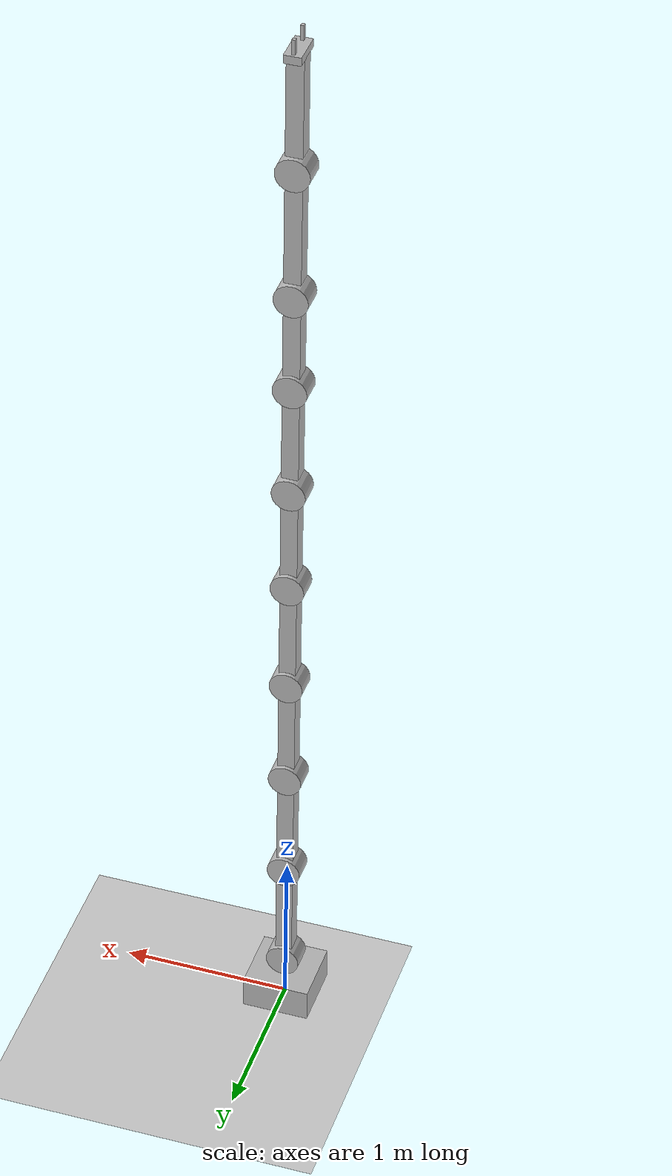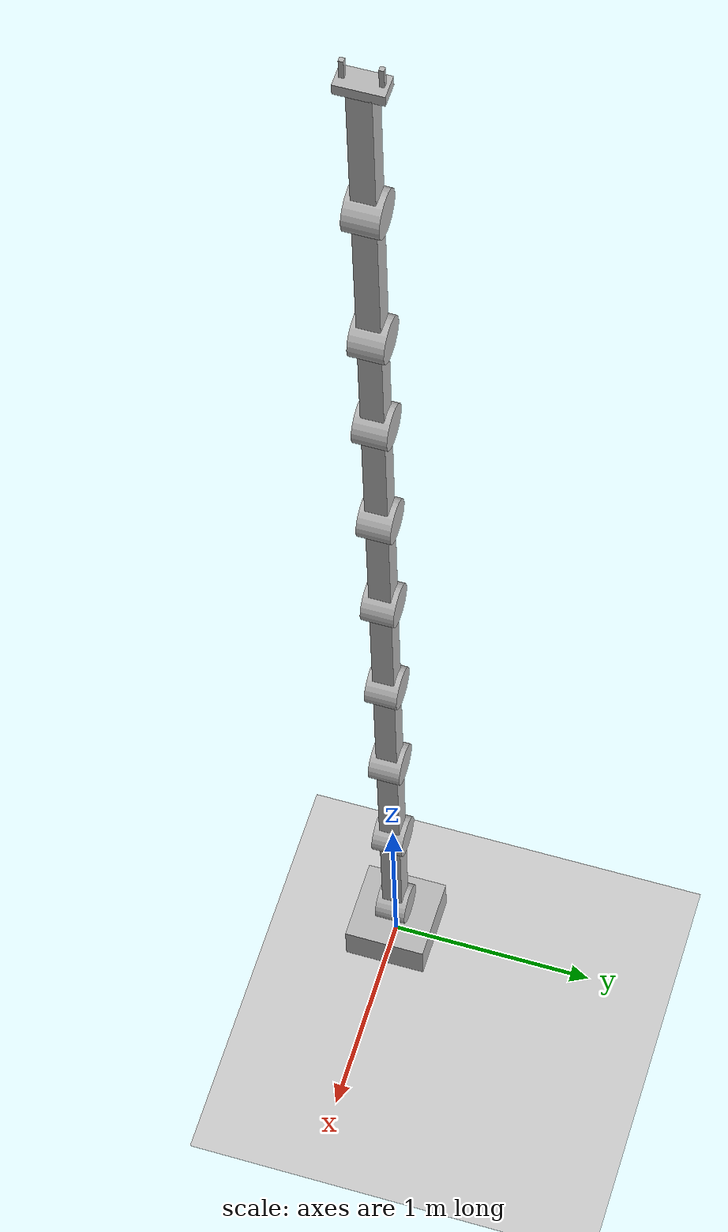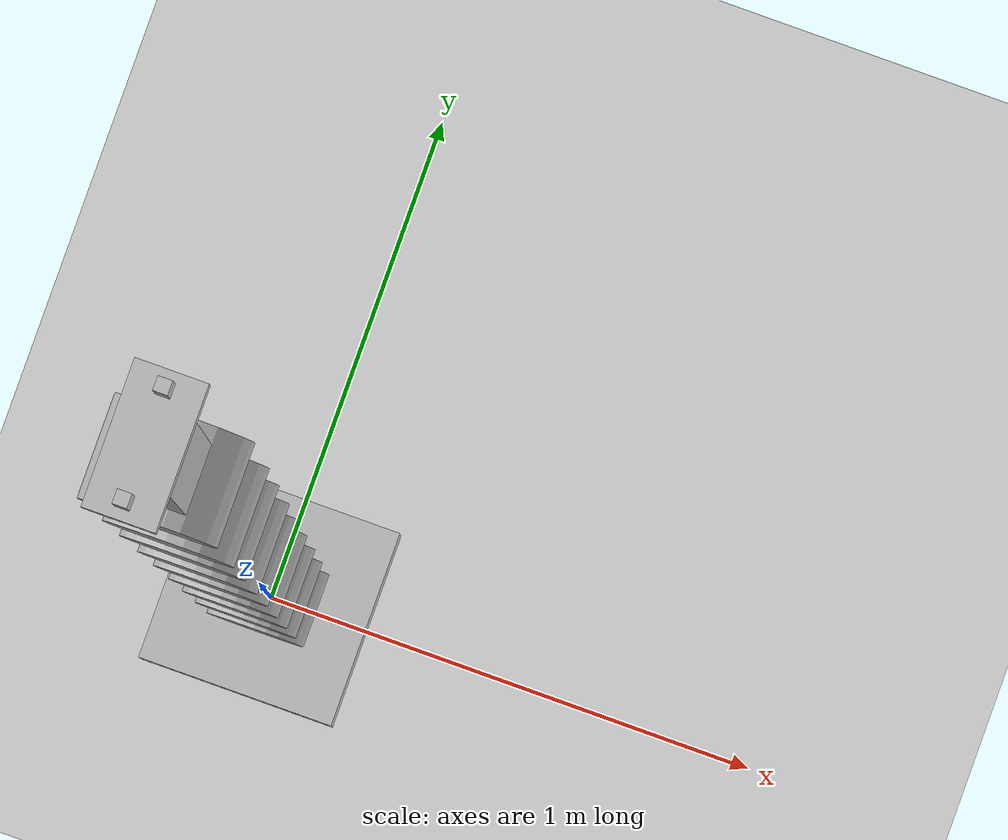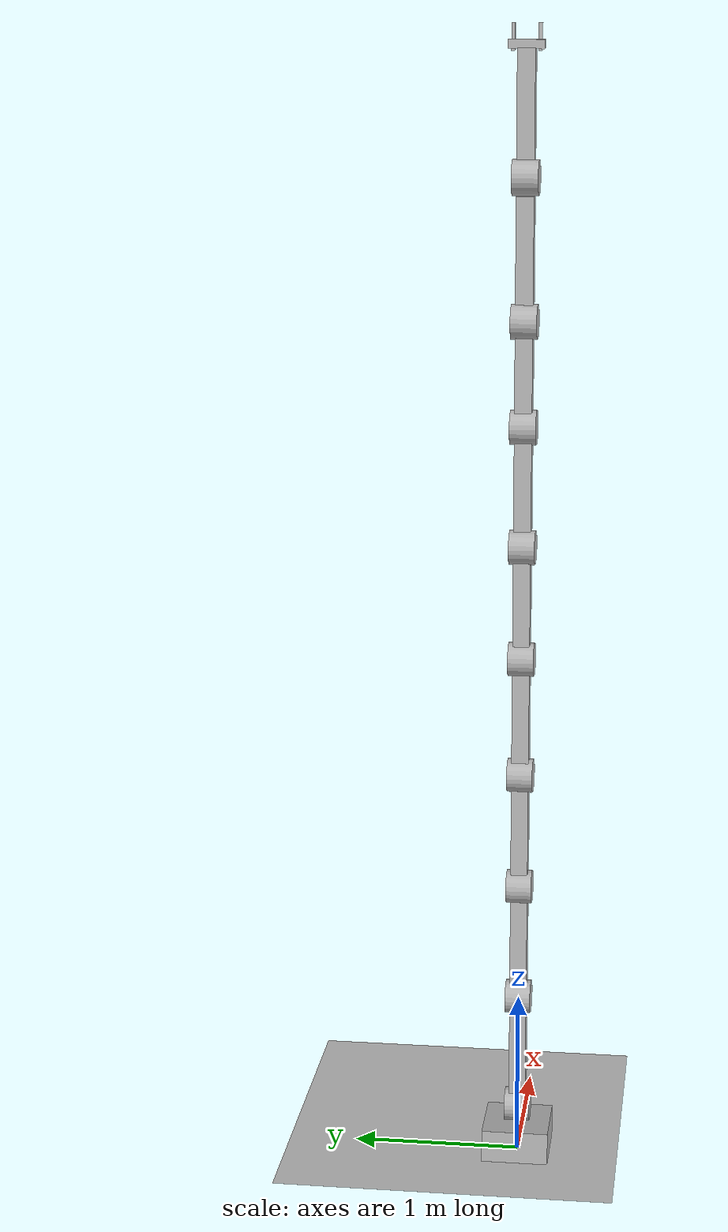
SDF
<?xml version="1.0" ?>
<sdf version="1.4">
  <world name="default">
    <!-- Ground Plane -->
    <include>
      <uri>model://ground_plane</uri>
    </include>
    <include>
      <uri>model://sun</uri>
    </include>
    <model name="my_model">
      <static>false</static>
      <link name="base">
        <pose>0 0 .1 0 0 0</pose>
        <inertial>
          <pose>0 0 0 0 0 0</pose>
          <inertia>
            <ixx>0.01</ixx>
            <ixy>0</ixy>
            <ixz>0</ixz>
            <iyy>0.01</iyy>
            <iyz>0</iyz>
            <izz>0.01</izz>
          </inertia>
          <mass>10</mass>
        </inertial>
        <collision name="collision">
          <geometry>
            <box>
              <size>0.4 0.4 0.2</size>
            </box>
          </geometry>
        </collision>
        <visual name="visual">
          <geometry>
            <box>
              <size>0.4 0.4 0.2</size>
            </box>
          </geometry>
        </visual>
      </link>
      <link name="joint1">
        <pose>0 0 0.3 0 1.5707 1.5707</pose>
        <collision name="collision">
          <geometry>
            <cylinder>
              <radius>.1</radius>
              <length>.15</length>
            </cylinder>
          </geometry>
        </collision>
        <visual name="visual">
          <geometry>
            <cylinder>
              <radius>.1</radius>
              <length>.15</length>
            </cylinder>
          </geometry>
        </visual>
      </link>
      <link name="link1">
        <pose>0 0 .66 0 0 0</pose>
        <inertial>
          <mass>.25</mass>
          <inertia>
            <!-- interias are tricky to compute -->
            <ixx>0.083</ixx>
            <!-- for a box: ixx = 0.083 * mass * (y*y + z*z) -->
            <ixy>0.0</ixy>
            <!-- for a box: ixy = 0 -->
            <ixz>0.0</ixz>
            <!-- for a box: ixz = 0 -->
            <iyy>0.083</iyy>
            <!-- for a box: iyy = 0.083 * mass * (x*x + z*z) -->
            <iyz>0.0</iyz>
            <!-- for a box: iyz = 0 -->
            <izz>0.083</izz>
            <!-- for a box: izz = 0.083 * mass * (x*x + y*y) -->
          </inertia>
        </inertial>
        <collision name="collision">
          <geometry>
            <box>
              <size>.1 .1 .6</size>
            </box>
          </geometry>
        </collision>
        <visual name="visual">
          <geometry>
            <box>
              <size>.1 .1 .6</size>
            </box>
          </geometry>
        </visual>
      </link>
      <link name="joint2">
        <pose>0 0 1.01 0 1.5707 1.5707</pose>
        <collision name="collision">
          <geometry>
            <cylinder>
              <radius>.1</radius>
              <length>.15</length>
            </cylinder>
          </geometry>
        </collision>
        <visual name="visual">
          <geometry>
            <cylinder>
              <radius>.1</radius>
              <length>.15</length>
            </cylinder>
          </geometry>
        </visual>
      </link>
      <link name="link2">
        <pose>0 0 1.37 0 0 0</pose>
        <inertial>
          <mass>.2</mass>
          <inertia>
            <ixx>0.083</ixx>
            <ixy>0.0</ixy>
            <ixz>0.0</ixz>
            <iyy>0.083</iyy>
            <iyz>0.0</iyz>
            <izz>0.083</izz>
          </inertia>
        </inertial>
        <collision name="collision1">
          <geometry>
            <box>
              <size>.1 .1 .6</size>
            </box>
          </geometry>
        </collision>
        <visual name="visual1">
          <geometry>
            <box>
              <size>.1 .1 .6</size>
            </box>
          </geometry>
        </visual>
      </link>
      <link name="joint3">
        <pose>0 0 1.72 0 1.5707 1.5707</pose>
        <collision name="collision">
          <geometry>
            <cylinder>
              <radius>.1</radius>
              <length>.15</length>
            </cylinder>
          </geometry>
        </collision>
        <visual name="visual">
          <geometry>
            <cylinder>
              <radius>.1</radius>
              <length>.15</length>
            </cylinder>
          </geometry>
        </visual>
      </link>
      <link name="link3">
        <pose>0 0 2.07 0 0 0</pose>
        <inertial>
          <mass>.2</mass>
          <inertia>
            <ixx>0.083</ixx>
            <ixy>0.0</ixy>
            <ixz>0.0</ixz>
            <iyy>0.083</iyy>
            <iyz>0.0</iyz>
            <izz>0.083</izz>
          </inertia>
        </inertial>
        <collision name="collision2">
          <geometry>
            <box>
              <size>.1 .1 .6</size>
            </box>
          </geometry>
        </collision>
        <visual name="visual2">
          <geometry>
            <box>
              <size>.1 .1 .6</size>
            </box>
          </geometry>
        </visual>
      </link>
      <link name="joint4">
        <pose>0 0 2.42 0 1.5707 1.5707</pose>
        <collision name="collision">
          <geometry>
            <cylinder>
              <radius>.1</radius>
              <length>.15</length>
            </cylinder>
          </geometry>
        </collision>
        <visual name="visual">
          <geometry>
            <cylinder>
              <radius>.1</radius>
              <length>.15</length>
            </cylinder>
          </geometry>
        </visual>
      </link>
      <link name="link4">
        <pose>0 0 2.78 0 0 0</pose>
        <inertial>
          <mass>.2</mass>
          <inertia>
            <ixx>0.083</ixx>
            <ixy>0.0</ixy>
            <ixz>0.0</ixz>
            <iyy>0.083</iyy>
            <iyz>0.0</iyz>
            <izz>0.083</izz>
          </inertia>
        </inertial>
        <collision name="collision3">
          <geometry>
            <box>
              <size>.1 .1 .6</size>
            </box>
          </geometry>
        </collision>
        <visual name="visual3">
          <geometry>
            <box>
              <size>.1 .1 .6</size>
            </box>
          </geometry>
        </visual>
      </link>
      <link name="joint5">
        <pose>0 0 3.13 0 1.5707 1.5707</pose>
        <collision name="collision">
          <geometry>
            <cylinder>
              <radius>.1</radius>
              <length>.15</length>
            </cylinder>
          </geometry>
        </collision>
        <visual name="visual">
          <geometry>
            <cylinder>
              <radius>.1</radius>
              <length>.15</length>
            </cylinder>
          </geometry>
        </visual>
      </link>
      <link name="link5">
        <pose>0 0 3.48 0 0 0</pose>
        <inertial>
          <mass>.2</mass>
          <inertia>
            <ixx>0.083</ixx>
            <ixy>0.0</ixy>
            <ixz>0.0</ixz>
            <iyy>0.083</iyy>
            <iyz>0.0</iyz>
            <izz>0.083</izz>
          </inertia>
        </inertial>
        <collision name="collision4">
          <geometry>
            <box>
              <size>.1 .1 .6</size>
            </box>
          </geometry>
        </collision>
        <visual name="visual4">
          <geometry>
            <box>
              <size>.1 .1 .6</size>
            </box>
          </geometry>
        </visual>
      </link>
      <link name="joint6">
        <pose>0 0 3.8 0 1.5707 1.5707</pose>
        <collision name="collision">
          <geometry>
            <cylinder>
              <radius>.1</radius>
              <length>.15</length>
            </cylinder>
          </geometry>
        </collision>
        <visual name="visual">
          <geometry>
            <cylinder>
              <radius>.1</radius>
              <length>.15</length>
            </cylinder>
          </geometry>
        </visual>
      </link>
    <link name="link6">
        <pose>0 0 4.2 0 0 0</pose>
        <inertial>
          <mass>.2</mass>
          <inertia>
            <ixx>0.083</ixx>
            <ixy>0.0</ixy>
            <ixz>0.0</ixz>
            <iyy>0.083</iyy>
            <iyz>0.0</iyz>
            <izz>0.083</izz>
          </inertia>
        </inertial>
        <collision name="collision4">
          <geometry>
            <box>
              <size>.1 .1 .6</size>
            </box>
          </geometry>
        </collision>
        <visual name="visual4">
          <geometry>
            <box>
              <size>.1 .1 .6</size>
            </box>
          </geometry>
        </visual>
      </link>
  <link name="joint7">
        <pose>0 0 4.5 0 1.5707 1.5707</pose>
        <collision name="collision">
          <geometry>
            <cylinder>
              <radius>.1</radius>
              <length>.15</length>
            </cylinder>
          </geometry>
        </collision>
        <visual name="visual">
          <geometry>
            <cylinder>
              <radius>.1</radius>
              <length>.15</length>
            </cylinder>
          </geometry>
        </visual>
      </link>
    <link name="link7">
        <pose>0 0 4.8 0 0 0</pose>
        <inertial>
          <mass>.2</mass>
          <inertia>
            <ixx>0.083</ixx>
            <ixy>0.0</ixy>
            <ixz>0.0</ixz>
            <iyy>0.083</iyy>
            <iyz>0.0</iyz>
            <izz>0.083</izz>
          </inertia>
        </inertial>
        <collision name="collision4">
          <geometry>
            <box>
              <size>.1 .1 .6</size>
            </box>
          </geometry>
        </collision>
        <visual name="visual4">
          <geometry>
            <box>
              <size>.1 .1 .6</size>
            </box>
          </geometry>
        </visual>
      </link>
  <link name="joint8">
        <pose>0 0 5.1 0 1.5707 1.5707</pose>
        <collision name="collision">
          <geometry>
            <cylinder>
              <radius>.1</radius>
              <length>.15</length>
            </cylinder>
          </geometry>
        </collision>
        <visual name="visual">
          <geometry>
            <cylinder>
              <radius>.1</radius>
              <length>.15</length>
            </cylinder>
          </geometry>
        </visual>
      </link>
    <link name="link8">
        <pose>0 0 5.5 0 0 0</pose>
        <inertial>
          <mass>.2</mass>
          <inertia>
            <ixx>0.083</ixx>
            <ixy>0.0</ixy>
            <ixz>0.0</ixz>
            <iyy>0.083</iyy>
            <iyz>0.0</iyz>
            <izz>0.083</izz>
          </inertia>
        </inertial>
        <collision name="collision4">
          <geometry>
            <box>
              <size>.1 .1 .6</size>
            </box>
          </geometry>
        </collision>
        <visual name="visual4">
          <geometry>
            <box>
              <size>.1 .1 .6</size>
            </box>
          </geometry>
        </visual>
      </link>
  <link name="joint9">
        <pose>0 0 5.9 0 1.5707 1.5707</pose>
        <collision name="collision">
          <geometry>
            <cylinder>
              <radius>.1</radius>
              <length>.15</length>
            </cylinder>
          </geometry>
        </collision>
        <visual name="visual">
          <geometry>
            <cylinder>
              <radius>.1</radius>
              <length>.15</length>
            </cylinder>
          </geometry>
        </visual>
      </link>
    <link name="link9">
        <pose>0 0 6.3 0 0 0</pose>
        <inertial>
          <mass>.2</mass>
          <inertia>
            <ixx>0.083</ixx>
            <ixy>0.0</ixy>
            <ixz>0.0</ixz>
            <iyy>0.083</iyy>
            <iyz>0.0</iyz>
            <izz>0.083</izz>
          </inertia>
        </inertial>
        <collision name="collision4">
          <geometry>
            <box>
              <size>.1 .1 .6</size>
            </box>
          </geometry>
        </collision>
        <visual name="visual4">
          <geometry>
            <box>
              <size>.1 .1 .6</size>
            </box>
          </geometry>
        </visual>
      </link>
     <link name="gripperbase">
        <pose>0 0 6.62 0 0 0</pose>
        <inertial>
          <mass>.1</mass>
          <inertia>
            <ixx>0.083</ixx>
            <ixy>0.0</ixy>
            <ixz>0.0</ixz>
            <iyy>0.083</iyy>
            <iyz>0.0</iyz>
            <izz>0.083</izz>
          </inertia>
        </inertial>
        <collision name="collision4">
          <geometry>
            <box>
              <size>.1 .2 .05</size>
            </box>
          </geometry>
        </collision>
        <visual name="visual4">
          <geometry>
            <box>
              <size>.1 .2 .05</size>
            </box>
          </geometry>
        </visual>
      </link>
  <link name="gripperleft">
        <pose>0 -0.075 6.66 0 0 0</pose>
        <inertial>
          <mass>.1</mass>
          <inertia>
            <ixx>0.083</ixx>
            <ixy>0.0</ixy>
            <ixz>0.0</ixz>
            <iyy>0.083</iyy>
            <iyz>0.0</iyz>
            <izz>0.083</izz>
          </inertia>
        </inertial>
        <collision name="collision4">
          <geometry>
            <box>
              <size>.02 .02 .15</size>
            </box>
          </geometry>
        </collision>
        <visual name="visual4">
          <geometry>
            <box>
              <size>.02 .02 .15</size>
            </box>
          </geometry>
        </visual>
      </link>
  <link name="gripperright">
        <pose>0 0.075 6.66 0 0 0</pose>
        <inertial>
          <mass>.1</mass>
          <inertia>
            <ixx>0.083</ixx>
            <ixy>0.0</ixy>
            <ixz>0.0</ixz>
            <iyy>0.083</iyy>
            <iyz>0.0</iyz>
            <izz>0.083</izz>
          </inertia>
        </inertial>
        <collision name="collision4">
          <geometry>
            <box>
              <size>.02 .02 .15</size>
            </box>
          </geometry>
        </collision>
        <visual name="visual4">
          <geometry>
            <box>
              <size>.02 .02 .15</size>
            </box>
          </geometry>
        </visual>
      </link>
      <joint name="base" type="revolute">
        <pose>0 0 0 0 0 0</pose>
        <child>base</child>
        <parent>world</parent>
        <axis>
          <limit>
            <lower>0</lower>
            <upper>0</upper>
          </limit>
          <xyz>1 0 0</xyz>
        </axis>
      </joint>
      <joint name="joint1" type="revolute">
        <pose>0 0 0 0 0 0</pose>
        <child>joint1</child>
        <parent>base</parent>
        <axis>
          <limit>
            <lower>-2</lower>
            <upper>2</upper>
          </limit>
          <xyz>0 1 0</xyz>
        </axis>
      </joint>
      <joint name="link1-join1" type="revolute">
        <pose>0 0 -0.05 0 0 0</pose>
        <child>link1</child>
        <parent>joint1</parent>
        <axis>
          <limit>
            <lower>0</lower>
            <upper>0</upper>
          </limit>
          <xyz>0 1 0</xyz>
        </axis>
      </joint>
      <joint name="joint2" type="revolute">
        <pose>0 0 -0.05 0 0 0</pose>
        <child>joint2</child>
        <parent>link1</parent>
        <axis>
          <limit>
            <lower>-2</lower>
            <upper>2</upper>
          </limit>
          <xyz>0 1 0</xyz>
        </axis>
      </joint>
      <joint name="link2-joint2" type="revolute">
        <pose>0 0 -0.05 0 0 0</pose>
        <child>link2</child>
        <parent>joint2</parent>
        <axis>
          <limit>
            <lower>0</lower>
            <upper>0</upper>
          </limit>
          <xyz>0 1 0</xyz>
        </axis>
      </joint>
      <joint name="joint3" type="revolute">
        <pose>0 0 -0.05 0 0 0</pose>
        <child>joint3</child>
        <parent>link2</parent>
        <axis>
          <limit>
            <lower>-2</lower>
            <upper>2</upper>
          </limit>
          <xyz>0 1 0</xyz>
        </axis>
      </joint>
      <joint name="link3-joint3" type="revolute">
        <pose>0 0 -0.05 0 0 0</pose>
        <child>link3</child>
        <parent>joint3</parent>
        <axis>
          <limit>
            <lower>0</lower>
            <upper>0</upper>
          </limit>
          <xyz>0 1 0</xyz>
        </axis>
      </joint>
      <joint name="joint4" type="revolute">
        <pose>0 0 -0.05 0 0 0</pose>
        <child>joint4</child>
        <parent>link3</parent>
        <axis>
          <limit>
            <lower>-2</lower>
            <upper>2</upper>
          </limit>
          <xyz>0 1 0</xyz>
        </axis>
      </joint>
      <joint name="link4-joint4" type="revolute">
        <pose>0 0 -0.05 0 0 0</pose>
        <child>link4</child>
        <parent>joint4</parent>
        <axis>
          <limit>
            <lower>0</lower>
            <upper>0</upper>
          </limit>
          <xyz>0 1 0</xyz>
        </axis>
      </joint>
      <joint name="joint5" type="revolute">
        <pose>0 0 -0.05 0 0 0</pose>
        <child>joint5</child>
        <parent>link4</parent>
        <axis>
          <limit>
            <lower>-2</lower>
            <upper>2</upper>
          </limit>
          <xyz>0 1 0</xyz>
        </axis>
      </joint>
      <joint name="link5-joint5" type="revolute">
        <pose>0 0 -0.05 0 0 0</pose>
        <child>link5</child>
        <parent>joint5</parent>
        <axis>
          <limit>
            <lower>0</lower>
            <upper>0</upper>
          </limit>
          <xyz>0 1 0</xyz>
        </axis>
      </joint>
  <joint name="joint6" type="revolute">
        <pose>0 0 -0.05 0 0 0</pose>
        <child>joint6</child>
        <parent>link5</parent>
        <axis>
          <limit>
            <lower>-2</lower>
            <upper>2</upper>
          </limit>
          <xyz>0 1 0</xyz>
        </axis>
      </joint>
    <joint name="link6-joint6" type="revolute">
        <pose>0 0 -0.05 0 0 0</pose>
        <child>link6</child>
        <parent>joint6</parent>
        <axis>
          <limit>
            <lower>0</lower>
            <upper>0</upper>
          </limit>
          <xyz>0 1 0</xyz>
        </axis>
      </joint>
  <joint name="joint7" type="revolute">
        <pose>0 0 -0.05 0 0 0</pose>
        <child>joint7</child>
        <parent>link6</parent>
        <axis>
          <limit>
            <lower>-2</lower>
            <upper>2</upper>
          </limit>
          <xyz>0 1 0</xyz>
        </axis>
      </joint>
    <joint name="link7-joint7" type="revolute">
        <pose>0 0 -0.05 0 0 0</pose>
        <child>link7</child>
        <parent>joint7</parent>
        <axis>
          <limit>
            <lower>0</lower>
            <upper>0</upper>
          </limit>
          <xyz>0 1 0</xyz>
        </axis>
      </joint>
  <joint name="joint8" type="revolute">
        <pose>0 0 -0.05 0 0 0</pose>
        <child>joint8</child>
        <parent>link7</parent>
        <axis>
          <limit>
            <lower>-2</lower>
            <upper>2</upper>
          </limit>
          <xyz>0 1 0</xyz>
        </axis>
      </joint>
    <joint name="link8-joint8" type="revolute">
        <pose>0 0 -0.05 0 0 0</pose>
        <child>link8</child>
        <parent>joint8</parent>
        <axis>
          <limit>
            <lower>0</lower>
            <upper>0</upper>
          </limit>
          <xyz>0 1 0</xyz>
        </axis>
      </joint>
   <joint name="joint9" type="revolute">
        <pose>0 0 -0.05 0 0 0</pose>
        <child>joint9</child>
        <parent>link8</parent>
        <axis>
          <limit>
            <lower>-2</lower>
            <upper>2</upper>
          </limit>
          <xyz>0 1 0</xyz>
        </axis>
      </joint>
    <joint name="link9-joint9" type="revolute">
        <pose>0 0 -0.05 0 0 0</pose>
        <child>link9</child>
        <parent>joint9</parent>
        <axis>
          <limit>
            <lower>0</lower>
            <upper>0</upper>
          </limit>
          <xyz>0 1 0</xyz>
        </axis>
      </joint>
   <joint name="gripperbase" type="revolute">
        <pose>0 0 -0.05 0 0 0</pose>
        <child>gripperbase</child>
        <parent>link9</parent>
        <axis>
          <limit>
            <lower>0</lower>
            <upper>0</upper>
          </limit>
          <xyz>0 1 0</xyz>
        </axis>
      </joint>
  <joint name="gripperleft" type="revolute">
        <pose>0 0 -0.05 0 0 0</pose>
        <child>gripperleft</child>
        <parent>gripperbase</parent>
        <axis>
          <limit>
            <lower>0</lower>
            <upper>0</upper>
          </limit>
          <xyz>0 1 0</xyz>
        </axis>
      </joint>
  <joint name="gripperright" type="revolute">
        <pose>0 0 -0.05 0 0 0</pose>
        <child>gripperright</child>
        <parent>gripperbase</parent>
        <axis>
          <limit>
            <lower>0</lower>
            <upper>0</upper>
          </limit>
          <xyz>0 1 0</xyz>
        </axis>
      </joint>
      <plugin name="hello_world" filename="libhello_world.so" />
    </model>
  </world>
</sdf>
